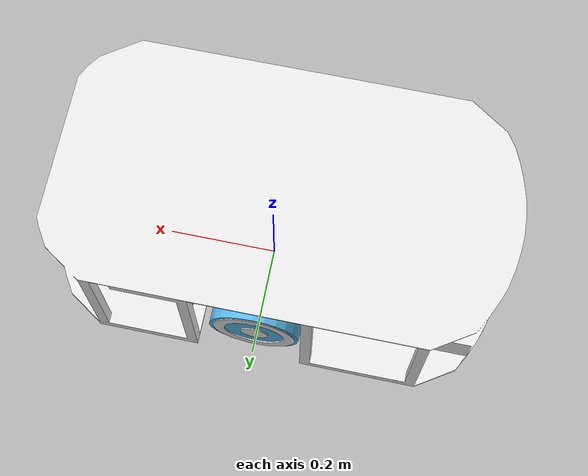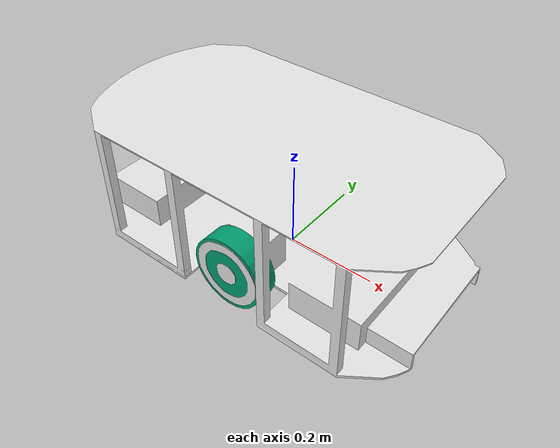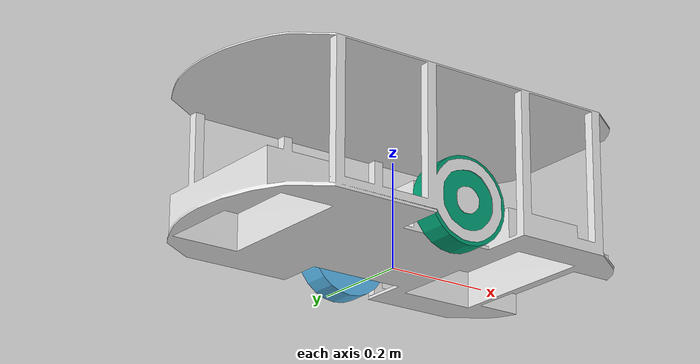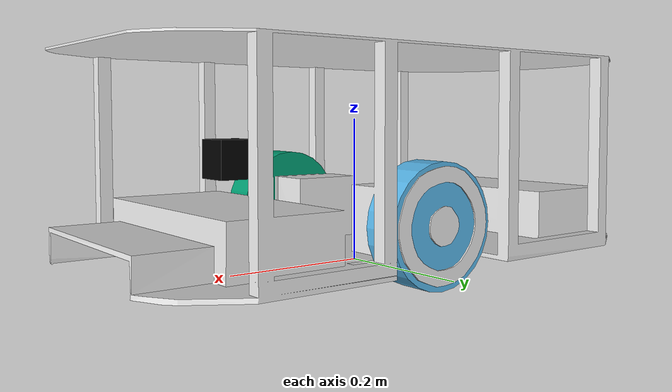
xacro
<?xml version="1.0"?>
<robot xmlns:xacro="http://www.ros.org/wiki/xacro" name="agv_robot">

<xacro:property name="mesh_pkg" value="agv_robot_description"/>
<xacro:property name="mesh_name" value="meshes/agv.stl"/>

<link name="base_link">
    <visual>
        <material name="Grey">
            <color rgba="${229/255} ${229/255} ${229/255} 1.0"/>
        </material>
        <origin xyz="0 0 0" rpy="0 0 0"/>
        <geometry>
        <mesh filename="package://${mesh_pkg}/${mesh_name}" scale="0.1 0.1 0.1"/>
        </geometry>
    </visual>
    <collision>
        <origin xyz="0 0 0" rpy="0 0 0"/>
        <geometry>
            <mesh filename="package://${mesh_pkg}/${mesh_name}" scale="0.1 0.1 0.1"/>
        </geometry>
    </collision>
    <inertial>
        <mass value="50.0"/>
        <origin xyz="0 0 0" rpy="0 0 0"/>
        <inertia ixx="0.5" ixy="0.0" ixz="0.0" iyy="0.5" iyz="0.0" izz="0.5"/>
    </inertial>
</link>

<link name="left_wheel">
  <visual>
    <origin xyz="0 0 0" rpy="1.561 0 0"/>
    <geometry>
      <cylinder length="0.05" radius="0.082"/>
    </geometry>
  </visual>
  <collision>
    <origin xyz="0 0 0" rpy="1.561 0 0"/>
    <geometry>
      <cylinder length="0.05" radius="0.082"/>
    </geometry>
  </collision>
  <inertial>
    <mass value="0.5"/>
    <origin xyz="0 0 0" rpy="0 0 0"/>
    <inertia
      ixx="0.001" ixy="0.0" ixz="0.0"
      iyy="0.001" iyz="0.0" izz="0.001"/>
  </inertial>
</link>

<joint name="left_wheel_joint" type="continuous">
  <parent link="base_link"/>
  <child link="left_wheel"/>
  <origin xyz="0 0.155 0.066" rpy="0 0 0"/>
  <axis xyz="0 1 0"/>
</joint>

<link name="right_wheel">
  <visual>
    <origin xyz="0 0 0" rpy="1.561 0 0"/>
    <geometry>
      <cylinder length="0.05" radius="0.082"/>
    </geometry>
  </visual>
  <collision>
    <origin xyz="0 0 0" rpy="1.561 0 0"/>
    <geometry>
      <cylinder length="0.05" radius="0.082"/>
    </geometry>
  </collision>
  <inertial>
    <mass value="0.5"/>
    <origin xyz="0 0 0" rpy="0 0 0"/>
    <inertia
      ixx="0.001" ixy="0.0" ixz="0.0"
      iyy="0.001" iyz="0.0" izz="0.001"/>
  </inertial>
</link>

<joint name="right_wheel_joint" type="continuous">
  <parent link="base_link"/>
  <child link="right_wheel"/>
  <origin xyz="0 -0.188 0.066" rpy="0 0 0"/>
  <axis xyz="0 1 0"/>
</joint>

<link name="camera_link">
    <visual>
        <origin xyz="0 0 0" rpy="0 0 0"/>
        <geometry>
            <box size="0.05 0.05 0.05"/>
        </geometry>
        <material name="Black">
            <color rgba="0 0 0 1.0"/>
        </material>
    </visual>
    <collision>
        <origin xyz="0 0 0" rpy="0 0 0"/>
        <geometry>
            <box size="0.05 0.05 0.05"/>
        </geometry>
    </collision>
    <inertial>
        <mass value="0.1"/>
        <origin xyz="0 0 0" rpy="0 0 0"/>
        <inertia ixx="0.0001" ixy="0.0" ixz="0.0" iyy="0.0001" iyz="0.0" izz="0.0001"/>
    </inertial>
</link>

<joint name="camera_joint" type="fixed">
    <parent link="base_link"/>
    <child link="camera_link"/>
    <origin xyz="0.2 0 0.15" rpy="0 0 0"/>
</joint>

<gazebo reference="camera_link">
    <sensor type="depth" name="depth_camera">
        <always_on>true</always_on>
        <update_rate>30.0</update_rate>
        <camera>
            <horizontal_fov>1.047</horizontal_fov>
            <image>
                <width>640</width>
                <height>480</height>
                <format>R_FLOAT32</format>
            </image>
            <clip>
                <near>0.1</near>
                <far>10.0</far>
            </clip>
            <noise>
                <type>gaussian</type>
                <mean>0.0</mean>
                <stddev>0.007</stddev>
            </noise>
        </camera>
        <plugin name="depth_camera_controller" filename="libgz-sim-sensor-components-system.so">
            <gz>sim</gz>
        </plugin>
    </sensor>
</gazebo>

<gazebo reference="camera_link">
    <sensor type="camera" name="rgbd_camera">
        <always_on>true</always_on>
        <update_rate>30.0</update_rate>
        <camera>
            <horizontal_fov>1.047</horizontal_fov>
            <image>
                <width>640</width>
                <height>480</height>
                <format>R8G8B8</format>
            </image>
            <clip>
                <near>0.1</near>
                <far>10.0</far>
            </clip>
        </camera>
        <plugin name="rgb_camera_controller" filename="libgz-sim-sensor-components-system.so">
            <gz>sim</gz>
        </plugin>
    </sensor>
</gazebo>

<gazebo>
  <plugin filename="libgz-sim-diff-drive-system.so" name="gz::sim::systems::DiffDrive">
    <left_joint>left_wheel_joint</left_joint>
    <right_joint>right_wheel_joint</right_joint>
    <wheel_separation>0.31</wheel_separation>
    <wheel_radius>0.072</wheel_radius>
    <odom_publish_frequency>30</odom_publish_frequency>
    <topic>cmd_vel</topic>
  </plugin>
</gazebo>

<gazebo reference="left_wheel">
  <mu1>1.0</mu1>
  <mu2>1.0</mu2>
</gazebo>

<gazebo reference="right_wheel">
  <mu1>1.0</mu1>
  <mu2>1.0</mu2>
</gazebo>

</robot>
